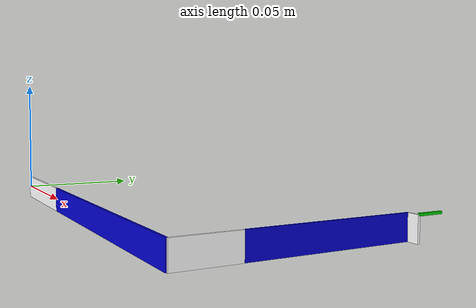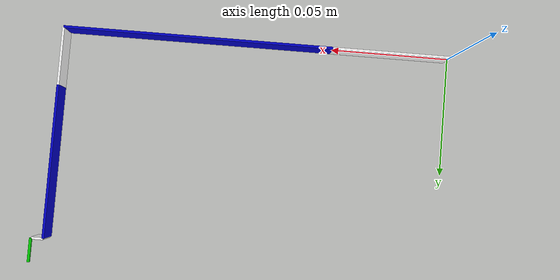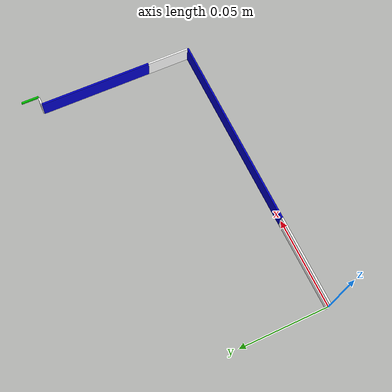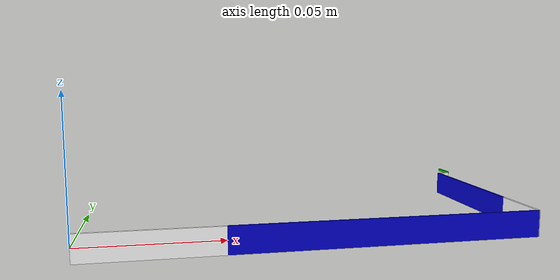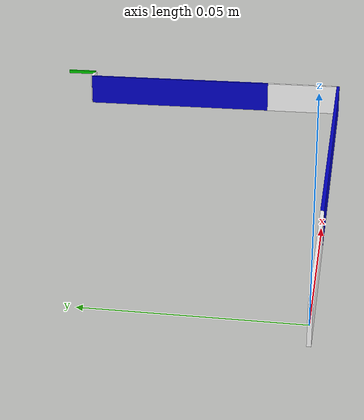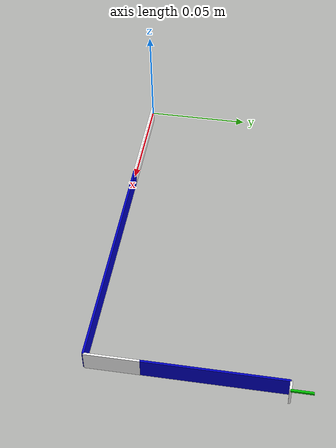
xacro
<?xml version="1.0"?>
<robot name="three_dof_planar_manipulator" xmlns:xacro="http://ros.org/wiki/xacro">
   <material name="blue">
	  <color rgba="0 0 0.8 1"/>
   </material>

   <material name="green">
      <color rgba="0.0 0.8 0.0 1.0"/>
   </material>

   <material name="white">
	<color rgba="1 1 1 1"/>
   </material>

   <link name="link1">
   <visual>
      <geometry>
         <box size="0.05 0.001 0.01"/>
      </geometry>
      <material name="white"/>
      <origin rpy="0 0 0" xyz="0.025 0 0.0"/>
    </visual>
   </link>

   <joint name="joint1" type="revolute">
     <axis xyz="0 0 1"/>
     <limit effort="1000.0" lower="-1.57" upper="1.57" velocity="0.5"/>
     <origin rpy="0 0 0" xyz="0.05 0 0"/>
     <parent link="link1"/>
     <child link="dummy1"/>
   </joint>

   <link name="dummy1">
   <visual>
      <geometry>
         <box size="0.115 0.001 0.01"/>
      </geometry>
      <material name="blue"/>
      <origin rpy="0 0 0" xyz="0.0575 0 0.0"/>
    </visual>
   </link>

   <joint name="fixed1" type="fixed">
     <origin rpy="0 0 1.57" xyz="0.115 0 0"/>
     <parent link="dummy1"/>
     <child link="link2"/>
   </joint>

   <link name="link2">
   <visual>
      <geometry>
         <box size="0.025 0.001 0.01"/>
      </geometry>
      <material name="white"/>
      <origin rpy="0 0 0" xyz="0.0125 0 0.0"/>
    </visual>
   </link>

   <joint name="joint2" type="revolute">
     <axis xyz="0 0 1"/>
     <limit effort="1000.0" lower="-1.57" upper="1.57" velocity="0.5"/>
     <origin rpy="0 0 0" xyz="0.025 0 0"/>
     <parent link="link2"/>
     <child link="dummy2"/>
   </joint>

   <link name="dummy2">
   <visual>
      <geometry>
         <box size="0.065 0.001 0.01"/>
      </geometry>
      <material name="blue"/>
      <origin rpy="0 0 0" xyz="0.0325 0 0.0"/>
    </visual>
   </link>

   <joint name="fixed2" type="fixed">
     <origin rpy="0 0 -1.5708" xyz="0.065 0 0"/>
     <parent link="dummy2"/>
     <child link="link3"/>
   </joint>

   <link name="link3">
   <visual>
      <geometry>
         <box size="0.005 0.001 0.01"/>
      </geometry>
      <material name="white"/>
      <origin rpy="0 0 0" xyz="0.0025 0 0.0"/>
    </visual>
   </link>

   <joint name="joint3" type="revolute">
     <axis xyz="0 0 1"/>
     <limit effort="1000.0" lower="-1.57" upper="1.57" velocity="0.5"/>
     <origin rpy="0 0 0" xyz="0.005 0 0"/>
     <parent link="link3"/>
     <child link="eff"/>
   </joint>

   <link name="eff">
   	<visual>
      <geometry>
         <box size="0.001 0.01 0.001"/>
      </geometry>
      <origin rpy="0 0 0" xyz="0 0.005 0.005"/>
      <material name="green"/>
    </visual>
   </link>

</robot>
